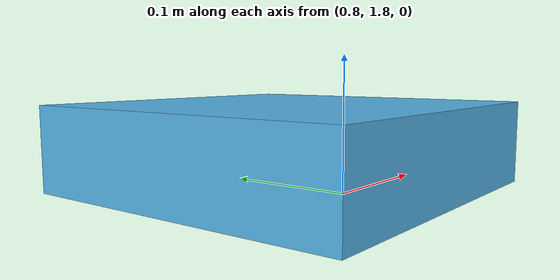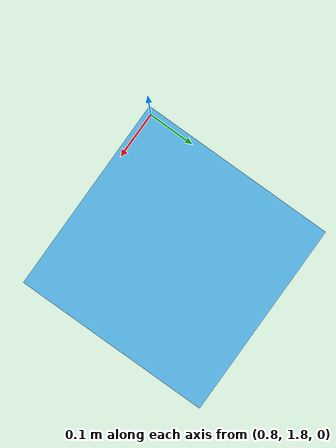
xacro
<?xml version="1.0" encoding="utf-8"?>

<robot name="warehouse_robot_desc" xmlns:xacro="http://www.ros.org/wiki/xacro">

    <link name="world">
    </link>

    <xacro:include filename="$(find wh_robot_urdf)/urdf/robot_single.xacro"/>

    <xacro:robot name="robot_1" parent="world" pos_x="1.0" pos_y="2.0"/>

</robot>

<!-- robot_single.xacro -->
<!-- Add a basic shape to get the robot working -->
<robot xmlns:xacro="http://www.ros.org/wiki/xacro">

    <xacro:macro name="robot" params="name parent pos_x pos_y">
        <link name="${name}">
            <visual>
                <origin xyz="${pos_x} ${pos_y} 0" rpy="0.0 0.0 0.0"/>
                <geometry>
                    <box size="0.4 0.4 0.1"/>
                </geometry>
            </visual>
        </link>

        <joint name="${parent}_to_${name}_joint" type="planar">
            <origin xyz="0 0 0" rpy="0 0 0"/>

            <parent link="${parent}"/>
            <child link="${name}"/>

            <axis xyz="0 0 1"/>

        </joint>
    </xacro:macro>

</robot>
